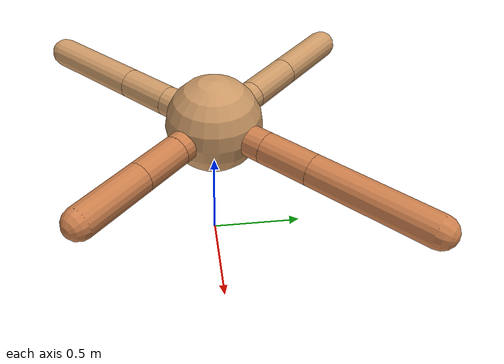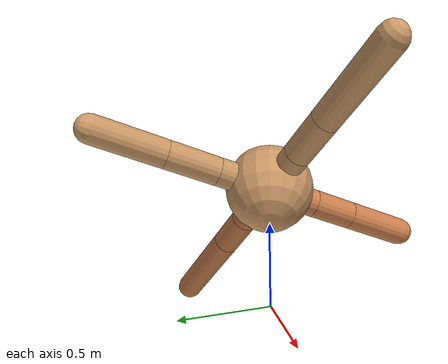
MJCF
<mujoco model="ant">
  <compiler angle="degree" coordinate="local" inertiafromgeom="true" />
  <option integrator="RK4" timestep="0.01" />
  <custom>
    <numeric data="0.0 0.0 0.55 1.0 0.0 0.0 0.0 0.0 1.0 0.0 -1.0 0.0 -1.0 0.0 1.0" name="init_qpos" />
  </custom>
  <default>
    <joint armature="1" damping="1" limited="true" />
    <geom conaffinity="0" condim="3" density="5.0" friction="1.5 0.1 0.1" margin="0.01" rgba="0.8 0.6 0.4 1" />
  </default>
  <worldbody>
    <body name="torso" pos="0 0 0.75">
      <geom name="torso_geom" pos="0 0 0" size="0.25" type="sphere" />

      <body name="front_left_leg" pos="0 0 0">
        <geom fromto="0.0 0.0 0.0 0.22916370582065007 0.22916370582065007 0.0" name="aux_1_geom" size="0.08" type="capsule" rgba=".8 .5 .3 1" />
        <body name="aux_1" pos="0.22916370582065007 0.22916370582065007 0.0">
          <joint axis="0 0 1" name="hip_1" pos="0.0 0.0 0.0" range="-40 40" type="hinge" />
          <geom fromto="0.0 0.0 0.0 0.1866839977331 0.1866839977331 0.0" name="left_leg_geom" size="0.08" type="capsule" rgba=".8 .5 .3 1" />
          <body pos="0.1866839977331 0.1866839977331 0.0" name="front_left_foot">
            <joint axis="-1 1 0" name="ankle_1" pos="0.0 0.0 0.0" range="30 100" type="hinge" />
            <geom fromto="0.0 0.0 0.0 0.44338697277448713 0.44338697277448713 0.0" name="left_ankle_geom" size="0.08" type="capsule" rgba=".8 .5 .3 1" />
          </body>
        </body>
      </body>
      <body name="front_right_leg" pos="0 0 0">
        <geom fromto="0.0 0.0 0.0 -0.22696541517107915 0.22696541517107915 0.0" name="aux_2_geom" size="0.08" type="capsule" />
        <body name="aux_2" pos="-0.22696541517107915 0.22696541517107915 0.0">
          <joint axis="0 0 1" name="hip_2" pos="0.0 0.0 0.0" range="-40 40" type="hinge" />
          <geom fromto="0.0 0.0 0.0 -0.21096769108875338 0.21096769108875338 0.0" name="right_leg_geom" size="0.08" type="capsule" />
          <body pos="-0.21096769108875338 0.21096769108875338 0.0" name="front_right_foot">
            <joint axis="1 1 0" name="ankle_2" pos="0.0 0.0 0.0" range="-100 -30" type="hinge" />
            <geom fromto="0.0 0.0 0.0 -0.2862018838650581 0.2862018838650581 0.0" name="right_ankle_geom" size="0.08" type="capsule" />
          </body>
        </body>
      </body>
      <body name="left_back_leg" pos="0 0 0">
        <geom fromto="0.0 0.0 0.0 -0.22389747897726014 -0.22389747897726014 0.0" name="aux_3_geom" size="0.08" type="capsule" />
        <body name="aux_3" pos="-0.22389747897726014 -0.22389747897726014 0.0">
          <joint axis="0 0 1" name="hip_3" pos="0.0 0.0 0.0" range="-40 40" type="hinge" />
          <geom fromto="0.0 0.0 0.0 -0.1931508839863919 -0.1931508839863919 0.0" name="back_leg_geom" size="0.08" type="capsule" />
          <body pos="-0.1931508839863919 -0.1931508839863919 0.0" name="left_back_foot">
            <joint axis="-1 1 0" name="ankle_3" pos="0.0 0.0 0.0" range="-100 -30" type="hinge" />
            <geom fromto="0.0 0.0 0.0 -0.3839103197661509 -0.3839103197661509 0.0" name="third_ankle_geom" size="0.08" type="capsule" />
          </body>
        </body>
      </body>
      <body name="right_back_leg" pos="0 0 0">
        <geom fromto="0.0 0.0 0.0 0.2041359120426014 -0.2041359120426014 0.0" name="aux_4_geom" size="0.08" type="capsule" rgba=".8 .5 .3 1" />
        <body name="aux_4" pos="0.2041359120426014 -0.2041359120426014 0.0">
          <joint axis="0 0 1" name="hip_4" pos="0.0 0.0 0.0" range="-40 40" type="hinge" />
          <geom fromto="0.0 0.0 0.0 0.1749674426472232 -0.1749674426472232 0.0" name="rightback_leg_geom" size="0.08" type="capsule" rgba=".8 .5 .3 1" />
          <body pos="0.1749674426472232 -0.1749674426472232 0.0" name="right_back_foot">
            <joint axis="1 1 0" name="ankle_4" pos="0.0 0.0 0.0" range="30 100" type="hinge" />
            <geom fromto="0.0 0.0 0.0 0.2614851763052235 -0.2614851763052235 0.0" name="fourth_ankle_geom" size="0.08" type="capsule" rgba=".8 .5 .3 1" />
          </body>
        </body>
      </body>
    </body>
  </worldbody>
  <actuator>
    <motor ctrllimited="true" ctrlrange="-1.0 1.0" joint="hip_4" gear="150" />
    <motor ctrllimited="true" ctrlrange="-1.0 1.0" joint="ankle_4" gear="150" />
    <motor ctrllimited="true" ctrlrange="-1.0 1.0" joint="hip_1" gear="150" />
    <motor ctrllimited="true" ctrlrange="-1.0 1.0" joint="ankle_1" gear="150" />
    <motor ctrllimited="true" ctrlrange="-1.0 1.0" joint="hip_2" gear="150" />
    <motor ctrllimited="true" ctrlrange="-1.0 1.0" joint="ankle_2" gear="150" />
    <motor ctrllimited="true" ctrlrange="-1.0 1.0" joint="hip_3" gear="150" />
    <motor ctrllimited="true" ctrlrange="-1.0 1.0" joint="ankle_3" gear="150" />
  </actuator>
</mujoco>
